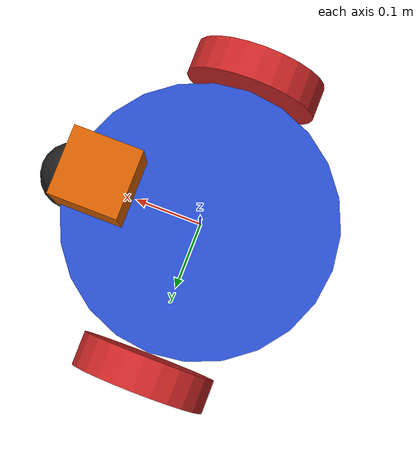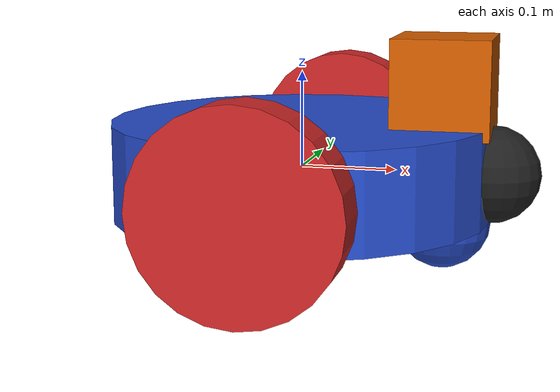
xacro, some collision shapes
<?xml version='1.0'?>

<robot name="my_robot" xmlns:xacro="http://www.ros.org/wiki/xacro">

  <link name="robot_footprint"></link>

  <xacro:include filename="$(find my_robot)/urdf/my_robot.gazebo" />
  <joint name="robot_footprint_joint" type="fixed">
    <origin xyz="0 0 0" rpy="0 0 0" />
    <parent link="robot_footprint"/>
    <child link="chassis" />
  </joint>

  <link name='chassis'>
    <pose>0 0 0.1 0 0 0</pose>

    <inertial>
      <mass value="15.0"/>
      <origin xyz="0.0 0 0" rpy=" 0 0 0"/>
      <inertia
          ixx="0.1" ixy="0" ixz="0"
          iyy="0.1" iyz="0"
          izz="0.1"
      />
    </inertial>

    <collision name='collision'>
      <origin xyz="0 0 0" rpy=" 0 0 0"/>
      <geometry>
        <cylinder radius="0.2" length="0.1"/>
      </geometry>
    </collision>

    <visual name='chassis_visual'>
      <origin xyz="0 0 0" rpy=" 0 0 0"/>
      <geometry>
        <cylinder radius="0.2" length="0.1"/>
      </geometry>
    </visual>

    <collision name='back_caster_collision'>
      <origin xyz="-0.15 0 -0.05" rpy=" 0 0 0"/>
      <geometry>
        <sphere radius="0.0499"/>
      </geometry>
    </collision>

    <visual name='back_caster_visual'>
      <origin xyz="-0.15 0 -0.05" rpy=" 0 0 0"/>
      <geometry>
        <sphere radius="0.05"/>
      </geometry>
    </visual>

    <collision name='front_caster_collision'>
      <origin xyz="0.15 0 -0.05" rpy=" 0 0 0"/>
      <geometry>
        <sphere radius="0.0499"/>
      </geometry>
    </collision>

    <visual name='front_caster_visual'>
      <origin xyz="0.15 0 -0.05" rpy=" 0 0 0"/>
      <geometry>
        <sphere radius="0.05"/>
      </geometry>
    </visual>
  </link>

    <link name="left_wheel">
    <visual>
      <origin xyz="0.0 0 0" rpy=" 0  1.5707 1.5707"/>
      <geometry>
          <cylinder radius="0.1" length="0.05"/>
      </geometry>
    </visual>
  <collision>
    <origin xyz="0.0 0 0" rpy=" 0  1.5707 1.5707"/>
    <geometry>
        <cylinder radius="0.1" length="0.05"/>
    </geometry>
  </collision>
    <inertial>
      <mass value="5.0"/>
      <origin xyz="0.0 0 0" rpy=" 0 1.5707 1.5707"/>
      <inertia
          ixx="0.1" ixy="0" ixz="0"
          iyy="0.1" iyz="0"
          izz="0.1"
      />
    </inertial>
  </link>

  <link name="right_wheel">
  <visual>
    <origin xyz="0.0 0 0" rpy=" 0  1.5707 1.5707"/>
    <geometry>
        <cylinder radius="0.1" length="0.05"/>
    </geometry>
  </visual>
  <collision>
    <origin xyz="0.0 0 0" rpy=" 0  1.5707 1.5707"/>
    <geometry>
        <cylinder radius="0.1" length="0.05"/>
    </geometry>
  </collision>
  <inertial>
      <mass value="5.0"/>
      <origin xyz="0.0 0 0" rpy=" 0  1.5707 1.5707"/>
      <inertia
          ixx="0.1" ixy="0" ixz="0"
          iyy="0.1" iyz="0"
          izz="0.1"
      />
    </inertial>
  </link>

  <link name="camera">
    <visual>
      <origin xyz="0.0 0 0" rpy=" 0 0 0"/>
      <geometry>
        <sphere radius= "0.05"/>
      </geometry>
    </visual>
  <collision>
    <origin xyz="0.0 0 0" rpy=" 0 0 0"/>
    <geometry>
        <sphere radius= "0.05"/>
    </geometry>
  </collision>
    <inertial>
      <mass value="0.1"/>
      <origin xyz="0.05 0.05 0.05" rpy=" 0 0 0"/>
      <box_inertia m="0.1" x="0.05" y="0.05" z="0.05"/>
      <inertia
          ixx="1e-6" ixy="0" ixz="0"
          iyy="1e-6" iyz="0"
          izz="1e-6"
      />
    </inertial>
  </link>

  <link name="hokuyo">
    <visual>
      <origin xyz="0.0 0 0" rpy=" 0 0 0"/>
      <geometry>
        <mesh filename="package://my_robot/meshes/hokuyo.dae"/>
      </geometry>
    </visual>
  <collision>
    <origin xyz="0.0 0 0" rpy=" 0 0 0"/>
    <geometry>
        <box size="0.1 0.1 0.1"/>
    </geometry>
  </collision>
    <inertial>
      <mass value="1e-5"/>
      <origin xyz="0.05 0.05 0.05" rpy=" 0 0 0"/>
      <inertia
          ixx="1e-6" ixy="0" ixz="0"
          iyy="1e-6" iyz="0"
          izz="1e-6"
      />
    </inertial>
  </link>

  <joint name="camera_optical_joint" type="fixed">
    <origin xyz="0 0 0" rpy="-1.5707 0 -1.5707"/>
    <parent link="camera"/>
    <child link="camera_link_optical"/>
  </joint>

  <link name="camera_link_optical">
  </link>

  <!--Joints-->

  <joint type="fixed" name="hokuyo_joint">
    <origin xyz="0.15 0 0.09" rpy="0 0 0"/>
    <child link="hokuyo"/>
    <parent link="chassis"/>
    <axis xyz="0 1 0" rpy="0 0 0"/>
    <limit effort="10000" velocity="1000"/>
    <dynamics damping="1.0" friction="1.0"/>
  </joint>

  <joint type="fixed" name="camera_joint">
    <origin xyz="0.2 0 0" rpy="0 0 0"/>
    <child link="camera"/>
    <parent link="chassis"/>
    <axis xyz="0 1 0" rpy="0 0 0"/>
    <limit effort="10000" velocity="1000"/>
    <dynamics damping="1.0" friction="1.0"/>
  </joint>

  <joint type="continuous" name="left_wheel_hinge">
    <origin xyz="0 0.23 0" rpy="0 0 0"/>
    <child link="left_wheel"/>
    <parent link="chassis"/>
    <axis xyz="0 1 0" rpy="0 0 0"/>
    <limit effort="10000" velocity="1000"/>
    <dynamics damping="1.0" friction="1.0"/>
  </joint>

  <joint type="continuous" name="right_wheel_hinge">
    <origin xyz="0 -0.23 0" rpy="0 0 0"/>
    <child link="right_wheel"/>
    <parent link="chassis"/>
    <axis xyz="0 1 0" rpy="0 0 0"/>
    <limit effort="10000" velocity="1000"/>
    <dynamics damping="1.0" friction="1.0"/>
  </joint>

  <!-- Colors-->
  <gazebo reference="left_wheel">
    <material>Gazebo/Red</material>
  </gazebo>

  <gazebo reference="right_wheel">
    <material>Gazebo/Red</material>
  </gazebo>

  <gazebo reference="chassis">
    <material>Gazebo/Blue</material>
  </gazebo>

  <gazebo reference="camera">
    <material>Gazebo/Black</material>
  </gazebo>

</robot>
